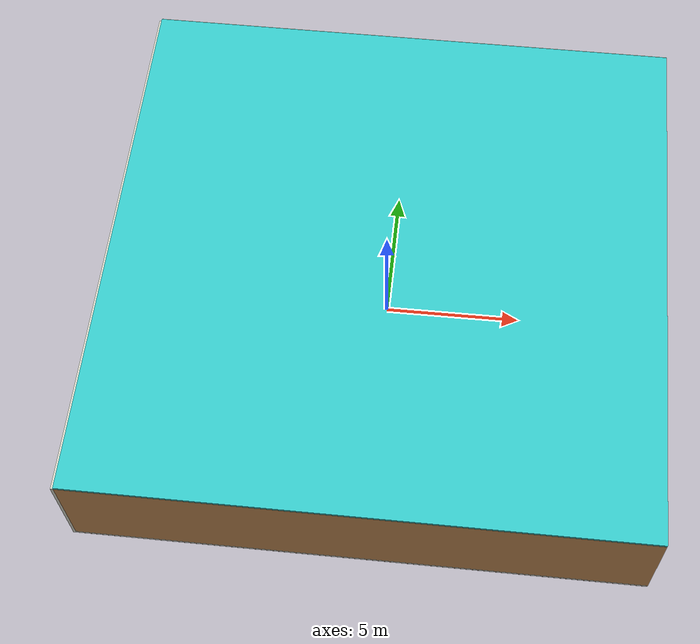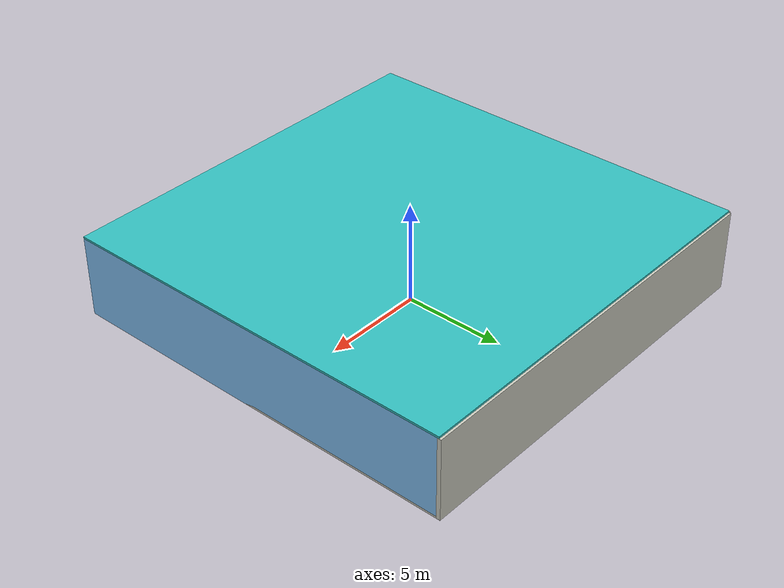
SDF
<sdf version="1.4">
 <world name="default">
  <physics type="ode">
   <max_step_size>0.001</max_step_size>
   <real_time_factor>1</real_time_factor>
   <real_time_update_rate>1000</real_time_update_rate>
   <gravity>0 0 -9.8</gravity>
  </physics>
  <scene><ambient>0.4 0.4 0.4 1</ambient><background>0.7 0.7 0.7 1</background><shadows>1</shadows></scene>
  <model name="Surrounding">
   <static>1</static>
   <link name="Ceiling">
    <collision name="Ceiling_Collision"><geometry><box><size>20 20 0.1</size></box></geometry></collision>
    <visual name="Ceiling_Visual">
     <geometry><box><size>20 20 0.1</size></box></geometry>
     <material>
      <script><uri>file://media/materials/scripts/gazebo.material</uri><name>Gazebo/Turquoise</name></script>
     </material>
    </visual>
    <pose>0 0 4.05 0 0 0</pose>
   </link>
   <link name="Wall_South">
    <collision name="Wall_South_Collision">
     <geometry><box><size>20 0 4</size></box></geometry>
     <pose>0 0 2 0 -0 0</pose>
    </collision>
    <visual name="Wall_South_Visual">
     <pose>0 0 2 0 -0 0</pose>
     <geometry><box><size>20 0 4</size></box></geometry>
     <material>
      <script><uri>file://media/materials/scripts/gazebo.material</uri><name>Gazebo/Wood</name></script>
     </material>
    </visual>
    <velocity_decay><linear>0</linear><angular>0</angular></velocity_decay>
    <pose>0 -10 0 0 -0 0</pose>
   </link>
   <link name="Wall_East">
    <collision name="Wall_21_Collision">
     <geometry><box><size>20 0 4</size></box></geometry>
     <pose>0 0 2 0 -0 0</pose>
    </collision>
    <visual name="Wall_21_Visual">
     <pose>0 0 2 0 -0 0</pose>
     <geometry><box><size>20 0 4</size></box></geometry>
     <material>
      <script><uri>file://media/materials/scripts/gazebo.material</uri><name>Gazebo/SkyBlue</name></script>
     </material>
    </visual>
    <velocity_decay><linear>0</linear><angular>0</angular></velocity_decay>
    <pose>10 0 0 0 -0 1.5708</pose>
   </link>
   <link name="Wall_North">
    <collision name="Wall_22_Collision">
     <geometry><box><size>20 0.2 4</size></box></geometry>
     <pose>0 0 2 0 -0 0</pose>
    </collision>
    <visual name="Wall_22_Visual">
     <pose>0 0 2 0 -0 0</pose>
     <geometry><box><size>20 0.2 4</size></box></geometry>
     <material>
      <script><uri>file://media/materials/scripts/gazebo.material</uri><name>Gazebo/PaintedWall</name></script>
     </material>
    </visual>
    <velocity_decay><linear>0</linear><angular>0</angular></velocity_decay>
    <pose>0 10 0 0 -0 0</pose>
   </link>
   <link name="Wall_West">
    <collision name="Wall_23_Collision">
     <geometry><box><size>20 0.2 4</size></box></geometry>
     <pose>0 0 2 0 -0 0</pose>
    </collision>
    <visual name="Wall_23_Visual">
     <pose>0 0 2 0 -0 0</pose>
     <geometry><box><size>20 0.2 4</size></box></geometry>
     <material>
      <script><uri>file://media/materials/scripts/gazebo.material</uri><name>Gazebo/PaintedWall</name></script>
     </material>
    </visual>
    <velocity_decay><linear>0</linear><angular>0</angular></velocity_decay>
    <pose>-10 0 0 0 0 -1.5708</pose>
   </link>
   <link name="Ground_link">
    <collision name="collision">
     <pose>0 0 .05 0 -0 0</pose>
     <geometry><box><size>20 20 0.1</size></box></geometry>
    </collision>
    <visual name="visual">
     <pose>0 0 .05 0 -0 0</pose>
     <geometry><box><size>20 20 0.1</size></box></geometry>
     <material>
      <script><uri>file://media/materials/scripts/gazebo.material</uri><name>Gazebo/PaintedWall</name></script>
     </material>
    </visual>
   </link>
   <static>1</static>
  </model>
  <spherical_coordinates>
   <surface_model>EARTH_WGS84</surface_model>
   <latitude_deg>0</latitude_deg>
   <longitude_deg>0</longitude_deg>
   <elevation>0</elevation>
   <heading_deg>0</heading_deg>
  </spherical_coordinates>
  <light name="lightball_0" type="diffuse">
   <diffuse>0.8 0.8 0.8 1</diffuse>
   <specular>0.2 0.2 0.2 1</specular>
   <attenuation>
    <range>100</range>
    <constant>0.7</constant>
    <linear>0.01</linear>
    <quadratic>0.001</quadratic>
   </attenuation>
   <direction>-0.5 0.1 -0.9</direction>
   <pose>-0.730203142602 5.44343731033 2.55438093451 0 0 0</pose>
  </light>
  <light name="lightball_1" type="diffuse">
   <diffuse>0.8 0.8 0.8 1</diffuse>
   <specular>0.2 0.2 0.2 1</specular>
   <attenuation>
    <range>100</range>
    <constant>0.7</constant>
    <linear>0.01</linear>
    <quadratic>0.001</quadratic>
   </attenuation>
   <direction>-0.5 0.1 -0.9</direction>
   <pose>-8.7362002948 -4.16247435016 1.33932073132 0 0 0</pose>
  </light>
  <light name="lightball_2" type="diffuse">
   <diffuse>0.8 0.8 0.8 1</diffuse>
   <specular>0.2 0.2 0.2 1</specular>
   <attenuation>
    <range>100</range>
    <constant>0.7</constant>
    <linear>0.01</linear>
    <quadratic>0.001</quadratic>
   </attenuation>
   <direction>-0.5 0.1 -0.9</direction>
   <pose>-6.58339590596 5.97103060368 3.2490957031 0 0 0</pose>
  </light>
  <light name="lightball_3" type="diffuse">
   <diffuse>0.8 0.8 0.8 1</diffuse>
   <specular>0.2 0.2 0.2 1</specular>
   <attenuation>
    <range>100</range>
    <constant>0.7</constant>
    <linear>0.01</linear>
    <quadratic>0.001</quadratic>
   </attenuation>
   <direction>-0.5 0.1 -0.9</direction>
   <pose>3.1667702866 -0.705317505974 2.03832585166 0 0 0</pose>
  </light>
  <light name="lightball_4" type="diffuse">
   <diffuse>0.8 0.8 0.8 1</diffuse>
   <specular>0.2 0.2 0.2 1</specular>
   <attenuation>
    <range>100</range>
    <constant>0.7</constant>
    <linear>0.01</linear>
    <quadratic>0.001</quadratic>
   </attenuation>
   <direction>-0.5 0.1 -0.9</direction>
   <pose>-5.67116301019 3.20471607565 3.83496869882 0 0 0</pose>
  </light>
  <light name="lightball_5" type="diffuse">
   <diffuse>0.8 0.8 0.8 1</diffuse>
   <specular>0.2 0.2 0.2 1</specular>
   <attenuation>
    <range>100</range>
    <constant>0.7</constant>
    <linear>0.01</linear>
    <quadratic>0.001</quadratic>
   </attenuation>
   <direction>-0.5 0.1 -0.9</direction>
   <pose>3.34318314168 -9.22616873226 1.47289659699 0 0 0</pose>
  </light>
  <light name="lightball_6" type="diffuse">
   <diffuse>0.8 0.8 0.8 1</diffuse>
   <specular>0.2 0.2 0.2 1</specular>
   <attenuation>
    <range>100</range>
    <constant>0.7</constant>
    <linear>0.01</linear>
    <quadratic>0.001</quadratic>
   </attenuation>
   <direction>-0.5 0.1 -0.9</direction>
   <pose>-0.422480023597 -7.70540198518 3.35196368592 0 0 0</pose>
  </light>
  <light name="lightball_7" type="diffuse">
   <diffuse>0.8 0.8 0.8 1</diffuse>
   <specular>0.2 0.2 0.2 1</specular>
   <attenuation>
    <range>100</range>
    <constant>0.7</constant>
    <linear>0.01</linear>
    <quadratic>0.001</quadratic>
   </attenuation>
   <direction>-0.5 0.1 -0.9</direction>
   <pose>6.90196256601 -4.35692508523 2.26737077939 0 0 0</pose>
  </light>
  <light name="lightball_8" type="diffuse">
   <diffuse>0.8 0.8 0.8 1</diffuse>
   <specular>0.2 0.2 0.2 1</specular>
   <attenuation>
    <range>100</range>
    <constant>0.7</constant>
    <linear>0.01</linear>
    <quadratic>0.001</quadratic>
   </attenuation>
   <direction>-0.5 0.1 -0.9</direction>
   <pose>-3.96319183038 -7.22788597549 0.630926441008 0 0 0</pose>
  </light>
  <light name="lightball_9" type="diffuse">
   <diffuse>0.8 0.8 0.8 1</diffuse>
   <specular>0.2 0.2 0.2 1</specular>
   <attenuation>
    <range>100</range>
    <constant>0.7</constant>
    <linear>0.01</linear>
    <quadratic>0.001</quadratic>
   </attenuation>
   <direction>-0.5 0.1 -0.9</direction>
   <pose>-8.63788707889 -7.71163759356 0.897040114714 0 0 0</pose>
  </light>
  <include><uri>model://table</uri><pose>-7.36397197281 -3.4106095984 0 0 0 2.16272735966</pose></include>
  <include>
   <uri>model://robocup_3Dsim_goal</uri>
   <pose>-7.52457502545 -2.68860163892 0 0 0 2.17730846715</pose>
  </include>
  <include>
   <uri>model://robocup_3Dsim_goal</uri>
   <pose>1.4953331912 -8.32432605849 0 0 0 0.868582380242</pose>
  </include>
  <include>
   <uri>model://construction_cone</uri>
   <pose>0.525815006986 -2.64743634941 0 0 0 0.501079621625</pose>
  </include>
  <include><uri>model://cabinet</uri><pose>2.38200310852 1.05489295232 0 0 0 2.23249350145</pose></include>
  <include><uri>model://cabinet</uri><pose>4.29851561665 -5.69735119116 0 0 0 0.325825987273</pose></include>
  <include>
   <uri>model://construction_cone</uri>
   <pose>7.91924233058 -1.57827775759 0 0 0 0.203480739161</pose>
  </include>
 </world>
</sdf>

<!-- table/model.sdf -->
<sdf version="1.5">
  <model name="table">
    <static>true</static>
    <link name="link">
      <collision name="surface">
        <pose>0 0 1.0 0 0 0</pose>
        <geometry>
          <box>
            <size>1.5 0.8 0.03</size>
          </box>
        </geometry>
        <surface>
          <friction>
            <ode>
              <mu>0.6</mu>
              <mu2>0.6</mu2>
            </ode>
          </friction>
        </surface>
      </collision>
      <visual name="visual1">
        <pose>0 0 1.0 0 0 0</pose>
        <geometry>
          <box>
            <size>1.5 0.8 0.03</size>
          </box>
        </geometry>
        <material>
          <script>
            <uri>model://media/materials/scripts/gazebo.material</uri>
            <name>Gazebo/Wood</name>
          </script>
        </material>
      </visual>
      <collision name="front_left_leg">
        <pose>0.68 0.38 0.5 0 0 0</pose>
        <geometry>
          <cylinder>
            <radius>0.02</radius>
            <length>1.0</length>
          </cylinder>
        </geometry>
      </collision>
      <visual name="front_left_leg">
        <pose>0.68 0.38 0.5 0 0 0</pose>
        <geometry>
          <cylinder>
            <radius>0.02</radius>
            <length>1.0</length>
          </cylinder>
        </geometry>
        <material>
          <script>
            <uri>model://media/materials/scripts/gazebo.material</uri>
            <name>Gazebo/Grey</name>
          </script>
        </material>
      </visual>
      <collision name="front_right_leg">
        <pose>0.68 -0.38 0.5 0 0 0</pose>
        <geometry>
          <cylinder>
            <radius>0.02</radius>
            <length>1.0</length>
          </cylinder>
        </geometry>
      </collision>
      <visual name="front_right_leg">
        <pose>0.68 -0.38 0.5 0 0 0</pose>
        <geometry>
          <cylinder>
            <radius>0.02</radius>
            <length>1.0</length>
          </cylinder>
        </geometry>
        <material>
          <script>
            <uri>model://media/materials/scripts/gazebo.material</uri>
            <name>Gazebo/Grey</name>
          </script>
        </material>
      </visual>
      <collision name="back_right_leg">
        <pose>-0.68 -0.38 0.5 0 0 0</pose>
        <geometry>
          <cylinder>
            <radius>0.02</radius>
            <length>1.0</length>
          </cylinder>
        </geometry>
      </collision>
      <visual name="back_right_leg">
        <pose>-0.68 -0.38 0.5 0 0 0</pose>
        <geometry>
          <cylinder>
            <radius>0.02</radius>
            <length>1.0</length>
          </cylinder>
        </geometry>
        <material>
          <script>
            <uri>model://media/materials/scripts/gazebo.material</uri>
            <name>Gazebo/Grey</name>
          </script>
        </material>
      </visual>
      <collision name="back_left_leg">
        <pose>-0.68 0.38 0.5 0 0 0</pose>
        <geometry>
          <cylinder>
            <radius>0.02</radius>
            <length>1.0</length>
          </cylinder>
        </geometry>
      </collision>
      <visual name="back_left_leg">
        <pose>-0.68 0.38 0.5 0 0 0</pose>
        <geometry>
          <cylinder>
            <radius>0.02</radius>
            <length>1.0</length>
          </cylinder>
        </geometry>
        <material>
          <script>
            <uri>model://media/materials/scripts/gazebo.material</uri>
            <name>Gazebo/Grey</name>
          </script>
        </material>
      </visual>
    </link>
  </model>
</sdf>

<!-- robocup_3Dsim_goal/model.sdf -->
<sdf version="1.5">
  <model name="robocup_3d_goal">
    <static>true</static>
    <link name="left_post">
      <pose>0 1.05 0.45 0 0 0</pose>
      <collision name="collision">
        <geometry>
          <cylinder>
            <radius>0.05</radius>
            <length>0.9</length>
          </cylinder>
        </geometry>
      </collision>
      <visual name="visual">
        <geometry>
          <cylinder>
            <radius>0.05</radius>
            <length>0.9</length>
          </cylinder>
        </geometry>
        <material>
          <script>
            <uri>file://media/materials/scripts/gazebo.material</uri>
            <name>Gazebo/ZincYellow</name>
          </script>
        </material>
      </visual>
    </link>
    <link name="left_support_horiz_lower">
      <pose>0.30 1.05 0.01 0 0 0</pose>
      <collision name="collision">
        <geometry>
          <box>
            <size>0.50 0.02 0.02</size>
          </box>
        </geometry>
      </collision>
      <visual name="visual">
        <geometry>
          <box>
            <size>0.50 0.02 0.02</size>
          </box>
        </geometry>
        <material>
          <script>
            <uri>file://media/materials/scripts/gazebo.material</uri>
            <name>Gazebo/White</name>
          </script>
        </material>
      </visual>
    </link>
    <link name="left_support_horiz_upper">
      <pose>0.30 1.05 0.79 0 0 0</pose>
      <collision name="collision">
        <geometry>
          <box>
            <size>0.50 0.02 0.02</size>
          </box>
        </geometry>
      </collision>
      <visual name="visual">
        <geometry>
          <box>
            <size>0.50 0.02 0.02</size>
          </box>
        </geometry>
        <material>
          <script>
            <uri>file://media/materials/scripts/gazebo.material</uri>
            <name>Gazebo/White</name>
          </script>
        </material>
      </visual>
    </link>
    <link name="left_support_vertical">
      <pose>0.56 1.05 0.4 0 1.5708 0</pose>
      <collision name="collision">
        <geometry>
          <box>
            <size>0.80 0.02 0.02</size>
          </box>
        </geometry>
      </collision>
      <visual name="visual">
        <geometry>
          <box>
            <size>0.80 0.02 0.02</size>
          </box>
        </geometry>
        <material>
          <script>
            <uri>file://media/materials/scripts/gazebo.material</uri>
            <name>Gazebo/White</name>
          </script>
        </material>
      </visual>
    </link>
    <link name="right_support_horiz_lower">
      <pose>0.30 -1.05 0.01 0 0 0</pose>
      <collision name="collision">
        <geometry>
          <box>
            <size>0.50 0.02 0.02</size>
          </box>
        </geometry>
      </collision>
      <visual name="visual">
        <geometry>
          <box>
            <size>0.50 0.02 0.02</size>
          </box>
        </geometry>
        <material>
          <script>
            <uri>file://media/materials/scripts/gazebo.material</uri>
            <name>Gazebo/White</name>
          </script>
        </material>
      </visual>
    </link>
    <link name="right_support_horiz_upper">
      <pose>0.30 -1.05 0.79 0 0 0</pose>
      <collision name="collision">
        <geometry>
          <box>
            <size>0.50 0.02 0.02</size>
          </box>
        </geometry>
      </collision>
      <visual name="visual">
        <geometry>
          <box>
            <size>0.50 0.02 0.02</size>
          </box>
        </geometry>
        <material>
          <script>
            <uri>file://media/materials/scripts/gazebo.material</uri>
            <name>Gazebo/White</name>
          </script>
        </material>
      </visual>
    </link>
    <link name="right_support_vertical">
      <pose>0.56 -1.05 0.4 0 1.5708 0</pose>
      <collision name="collision">
        <geometry>
          <box>
            <size>0.80 0.02 0.02</size>
          </box>
        </geometry>
      </collision>
      <visual name="visual">
        <geometry>
          <box>
            <size>0.80 0.02 0.02</size>
          </box>
        </geometry>
        <material>
          <script>
            <uri>file://media/materials/scripts/gazebo.material</uri>
            <name>Gazebo/White</name>
          </script>
        </material>
      </visual>
    </link>
    <link name="center_support_horiz_lower">
      <pose>0.56 0 0.01 0 1.5708 0</pose>
      <collision name="collision">
        <geometry>
          <box>
            <size>0.02 2.08 0.02</size>
          </box>
        </geometry>
      </collision>
      <visual name="visual">
        <geometry>
          <box>
            <size>0.02 2.08 0.02</size>
          </box>
        </geometry>
        <material>
          <script>
            <uri>file://media/materials/scripts/gazebo.material</uri>
            <name>Gazebo/White</name>
          </script>
        </material>
      </visual>
    </link>
    <link name="center_support_horiz_upper">
      <pose>0.56 0 0.79 0 1.5708 0</pose>
      <collision name="collision">
        <geometry>
          <box>
            <size>0.02 2.08 0.02</size>
          </box>
        </geometry>
      </collision>
      <visual name="visual">
        <geometry>
          <box>
            <size>0.02 2.08 0.02</size>
          </box>
        </geometry>
        <material>
          <script>
            <uri>file://media/materials/scripts/gazebo.material</uri>
            <name>Gazebo/White</name>
          </script>
        </material>
      </visual>
    </link>
    <link name="right_post">
      <pose>0 -1.05 0.45 0 0 0</pose>
      <collision name="collision">
        <geometry>
          <cylinder>
            <radius>0.05</radius>
            <length>0.9</length>
          </cylinder>
        </geometry>
      </collision>
      <visual name="visual">
        <geometry>
          <cylinder>
            <radius>0.05</radius>
            <length>0.9</length>
          </cylinder>
        </geometry>
        <material>
          <script>
            <uri>file://media/materials/scripts/gazebo.material</uri>
            <name>Gazebo/ZincYellow</name>
          </script>
        </material>
      </visual>
    </link>
    <link name="crossbar">
      <pose>0 0 0.85 1.57 1.57 0</pose>
      <collision name="collision">
        <geometry>
          <cylinder>
            <radius>0.05</radius>
            <length>2.0</length>
          </cylinder>
        </geometry>
      </collision>
      <visual name="visual">
        <geometry>
          <cylinder>
            <radius>0.05</radius>
            <length>2.0</length>
          </cylinder>
        </geometry>
        <material>
          <script>
            <uri>file://media/materials/scripts/gazebo.material</uri>
            <name>Gazebo/ZincYellow</name>
          </script>
        </material>
      </visual>
    </link>
    <link name="center_net">
      <pose>0.56 0 0.40 0 0 0</pose>
      <collision name="collision">
        <geometry>
          <box>
            <size>0.01 2.1 0.80</size>
          </box>
        </geometry>
      </collision>
      <visual name="visual">
        <geometry>
          <box>
            <size>0.01 2.1 0.80</size>
          </box>
        </geometry>
        <material>
          <script>
            <uri>model://../model_source/models/robocup09_spl_field/materials/scripts/</uri>
            <uri>model://../model_source/models/robocup09_spl_field/materials/textures/</uri>
            <name>RoboCup/Net</name>
          </script>
        </material>
      </visual>
    </link>
    <link name="left_net">
      <pose>0.30 1.05 0.40 0 0 0</pose>
      <collision name="collision">
        <geometry>
          <box>
            <size>0.50 0.01 0.76</size>
          </box>
        </geometry>
      </collision>
      <visual name="visual">
        <geometry>
          <box>
            <size>0.50 0.01 0.76</size>
          </box>
        </geometry>
        <material>
          <script>
            <uri>model://../model_source/models/robocup09_spl_field/materials/scripts/</uri>
            <uri>model://../model_source/models/robocup09_spl_field/materials/textures/</uri>
            <name>RoboCup/Net</name>
          </script>
        </material>
      </visual>
    </link>
    <link name="right_net">
      <pose>0.30 -1.05 0.40 0 0 0</pose>
      <collision name="collision">
        <geometry>
          <box>
            <size>0.50 0.01 0.76</size>
          </box>
        </geometry>
      </collision>
      <visual name="visual">
        <geometry>
          <box>
            <size>0.50 0.01 0.76</size>
          </box>
        </geometry>
        <material>
          <script>
            <uri>model://../model_source/models/robocup09_spl_field/materials/scripts/</uri>
            <uri>model://../model_source/models/robocup09_spl_field/materials/textures/</uri>
            <name>RoboCup/Net</name>
          </script>
        </material>
      </visual>
    </link>
  </model>
</sdf>

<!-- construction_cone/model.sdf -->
<sdf version="1.5">
  <model name="Construction Cone">
    <link name="link">
      <collision name="collision">
        <geometry>
          <mesh>
            <scale>10 10 10</scale>
            <uri>file://isr-testbed/construction_cone/meshes/construction_cone.dae</uri>
          </mesh>
        </geometry>
      </collision>
      <visual name="visual">
        <geometry>
          <mesh>
            <scale>10 10 10</scale>
            <uri>file://isr-testbed/construction_cone/meshes/construction_cone.dae</uri>
          </mesh>
        </geometry>
      </visual>
    </link>
  </model>
</sdf>

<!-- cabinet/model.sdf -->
<sdf version="1.5">
  <model name="cabinet">
    <static>true</static>
    <link name="cabinet_bottom_plate">
      <inertial>
        <pose>0 0 -1 0 0 0</pose>
        <inertia>
          <ixx>2.050000</ixx>
          <ixy>0</ixy>
          <ixz>0</ixz>
          <iyy>2.050000</iyy>
          <iyz>0</iyz>
          <izz>2.050000</izz>
        </inertia>
        <mass>25.000000</mass>
      </inertial>
      <collision name="cabinet_bottom_plate_geom">
        <pose>0 0 0.010000 0 0 0</pose>
        <geometry>
          <box>
            <size>0.450000 0.450000 0.020000</size>
          </box>
        </geometry>
      </collision>
      <visual name="cabinet_bottom_plate_geom_visual">
        <pose>0 0 0.010000 0 0 0</pose>
        <geometry>
          <box>
            <size>0.450000 0.450000 0.020000</size>
          </box>
        </geometry>
        <material>
          <script>
            <uri>model://media/materials/scripts/gazebo.material</uri>
            <name>Gazebo/Wood</name>
          </script>
        </material>
      </visual>
      <collision name="cabinet_bottom_plate_geom_cabinet_back_plate">
        <pose>0.235000 0 0.510000 0 0 0</pose>
        <geometry>
          <box>
            <size>0.020000 0.450000 1.020000</size>
          </box>
        </geometry>
      </collision>
      <visual name="cabinet_bottom_plate_geom_cabinet_back_plate_visual">
        <pose>0.235000 0 0.510000 0 0 0</pose>
        <geometry>
          <box>
            <size>0.020000 0.450000 1.020000</size>
          </box>
        </geometry>
        <material>
          <script>
            <uri>model://media/materials/scripts/gazebo.material</uri>
            <name>Gazebo/Wood</name>
          </script>
        </material>
      </visual>
      <collision name="cabinet_bottom_plate_geom_cabinet_left_plate">
        <pose>0 0.235000 0.510000 0 0 0</pose>
        <geometry>
          <box>
            <size>0.450000 0.020000 1.020000</size>
          </box>
        </geometry>
      </collision>
      <visual name="cabinet_bottom_plate_geom_cabinet_left_plate_visual">
        <pose>0 0.235000 0.510000 0 0 0</pose>
        <geometry>
          <box>
            <size>0.450000 0.020000 1.020000</size>
          </box>
        </geometry>
        <material>
          <script>
            <uri>model://media/materials/scripts/gazebo.material</uri>
            <name>Gazebo/Wood</name>
          </script>
        </material>
      </visual>
      <collision name="cabinet_bottom_plate_geom_cabinet_middle_plate">
        <pose>0 0 0.510000 0 0 0</pose>
        <geometry>
          <box>
            <size>0.450000 0.450000 0.020000</size>
          </box>
        </geometry>
      </collision>
      <visual name="cabinet_bottom_plate_geom_cabinet_middle_plate_visual">
        <pose>0 0 0.510000 0 0 0</pose>
        <geometry>
          <box>
            <size>0.450000 0.450000 0.020000</size>
          </box>
        </geometry>
        <material>
          <script>
            <uri>model://media/materials/scripts/gazebo.material</uri>
            <name>Gazebo/Wood</name>
          </script>
        </material>
      </visual>
      <collision name="cabinet_bottom_plate_geom_cabinet_right_plate">
        <pose>0 -0.235000 0.510000 0 0 0</pose>
        <geometry>
          <box>
            <size>0.450000 0.020000 1.020000</size>
          </box>
        </geometry>
      </collision>
      <visual name="cabinet_bottom_plate_geom_cabinet_right_plate_visual">
        <pose>0 -0.235000 0.510000 0 0 0</pose>
        <geometry>
          <box>
            <size>0.450000 0.020000 1.020000</size>
          </box>
        </geometry>
        <material>
          <script>
            <uri>model://media/materials/scripts/gazebo.material</uri>
            <name>Gazebo/Wood</name>
          </script>
        </material>
      </visual>
      <collision name="cabinet_bottom_plate_geom_cabinet_top_plate">
        <pose>0 0 1.010000 0 0 0</pose>
        <geometry>
          <box>
            <size>0.450000 0.450000 0.020000</size>
          </box>
        </geometry>
      </collision>
      <visual name="cabinet_bottom_plate_geom_cabinet_top_plate_visual">
        <pose>0 0 1.010000 0 0 0</pose>
        <geometry>
          <box>
            <size>0.450000 0.450000 0.020000</size>
          </box>
        </geometry>
        <material>
          <script>
            <uri>model://media/materials/scripts/gazebo.material</uri>
            <name>Gazebo/Wood</name>
          </script>
        </material>
      </visual>
    </link>
  </model>
</sdf>
